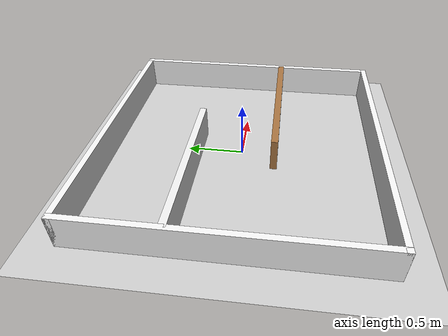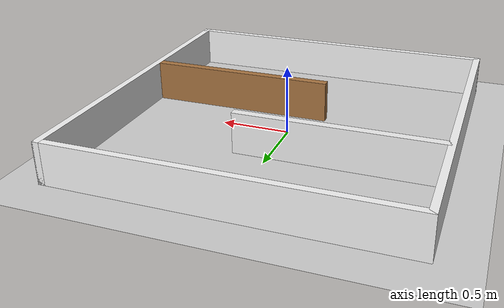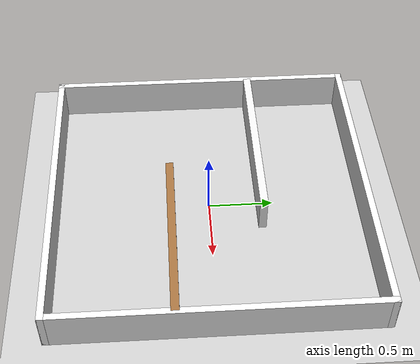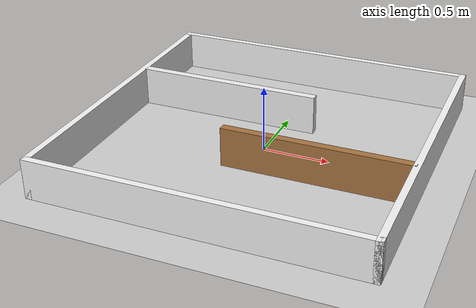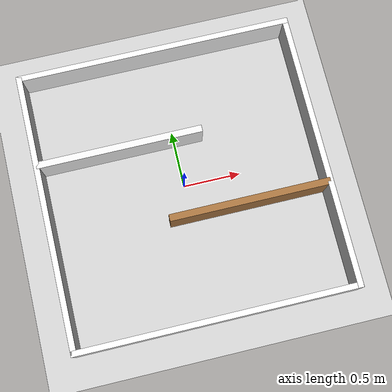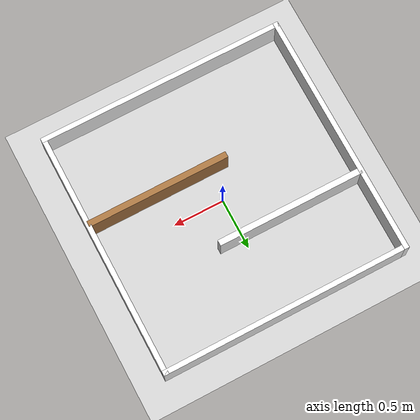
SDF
<?xml version="1.0" ?>
<sdf version="1.6">
  <world name="td3_small_arena">

    <include><uri>model://ground_plane</uri></include>
    <include><uri>model://sun</uri></include>
    <scene><shadows>false</shadows></scene>

    <physics type="ode">
      <real_time_update_rate>500.0</real_time_update_rate>
      <max_step_size>0.002</max_step_size>
      <real_time_factor>1</real_time_factor>
    </physics>

    <!-- Arena walls -->
    <model name="arena_walls">
      <static>true</static>
      <link name="north_wall">
        <pose>0 1.2 0.15 0 0 0</pose>
        <collision name="c"><geometry><box><size>2.45 0.05 0.30</size></box></geometry></collision>
        <visual name="v"><geometry><box><size>2.45 0.05 0.30</size></box></geometry>
          <material><ambient>0.95 0.95 0.95 1</ambient></material></visual>
      </link>
      <link name="south_wall">
        <pose>0 -1.2 0.15 0 0 0</pose>
        <collision name="c"><geometry><box><size>2.45 0.05 0.30</size></box></geometry></collision>
        <visual name="v"><geometry><box><size>2.45 0.05 0.30</size></box></geometry>
          <material><ambient>0.95 0.95 0.95 1</ambient></material></visual>
      </link>
      <link name="west_wall">
        <pose>-1.2 0 0.15 0 0 0</pose>
        <collision name="c"><geometry><box><size>0.05 2.45 0.30</size></box></geometry></collision>
        <visual name="v"><geometry><box><size>0.05 2.45 0.30</size></box></geometry>
          <material><ambient>0.95 0.95 0.95 1</ambient></material></visual>
      </link>
      <link name="east_wall">
        <pose>1.2 0 0.15 0 0 0</pose>
        <collision name="c"><geometry><box><size>0.05 2.45 0.30</size></box></geometry></collision>
        <visual name="v"><geometry><box><size>0.05 2.45 0.30</size></box></geometry>
          <material><ambient>0.95 0.95 0.95 1</ambient></material></visual>
      </link>
    </model>

    <model name="obstacle_1">
      <static>true</static>
      <link name="link">
        <pose>-0.475 0.40 0.15 0 0 0</pose>
        <collision name="c"><geometry><box><size>1.45 0.06 0.30</size></box></geometry></collision>
        <visual name="v"><geometry><box><size>1.45 0.06 0.30</size></box></geometry>
          <material><ambient>0.93 0.93 0.93 1</ambient><diffuse>0.93 0.93 0.93 1</diffuse></material></visual>
      </link>
    </model>

    <model name="obstacle_2">
      <static>true</static>
      <link name="link">
        <pose>0.50 -0.30 0.15 0 0 0</pose>
        <collision name="c"><geometry><box><size>1.40 0.06 0.30</size></box></geometry></collision>
        <visual name="v"><geometry><box><size>1.40 0.06 0.30</size></box></geometry>
          <material><ambient>0.65 0.45 0.25 1</ambient><diffuse>0.65 0.45 0.25 1</diffuse></material></visual>
      </link>
    </model>

  </world>
</sdf>
